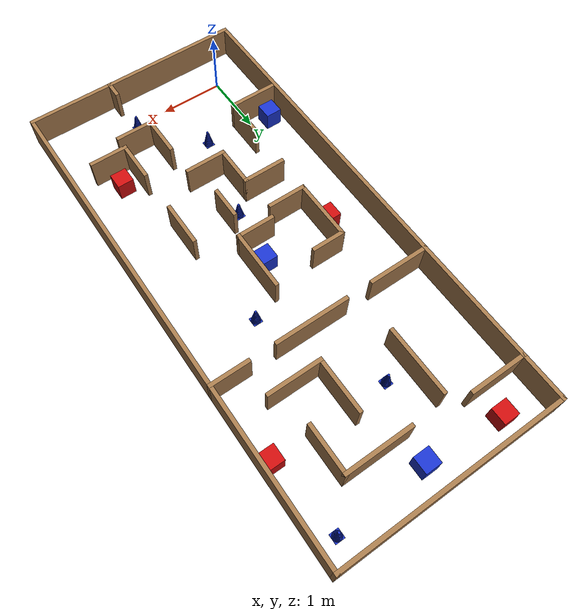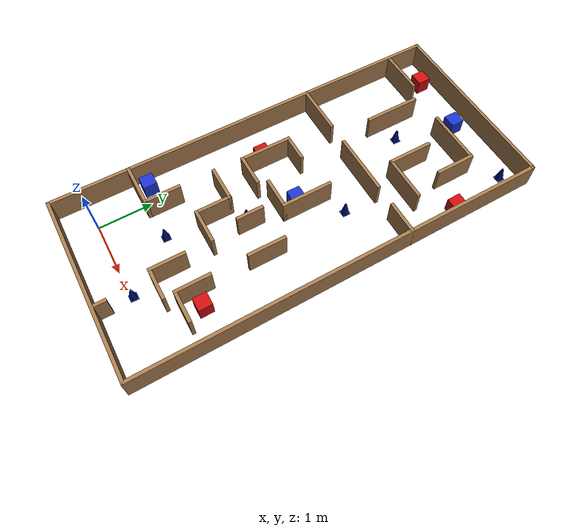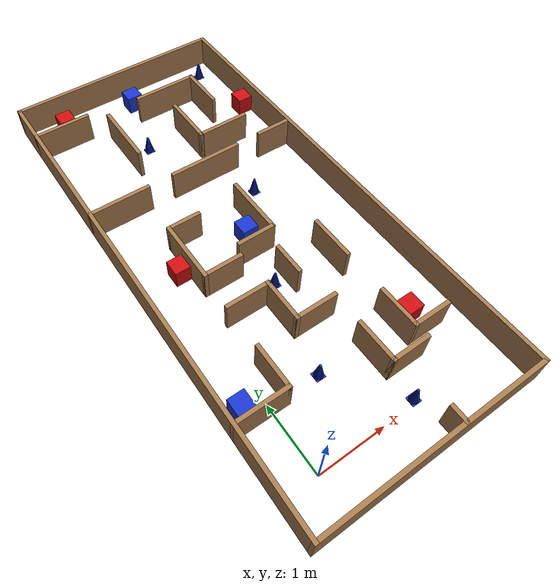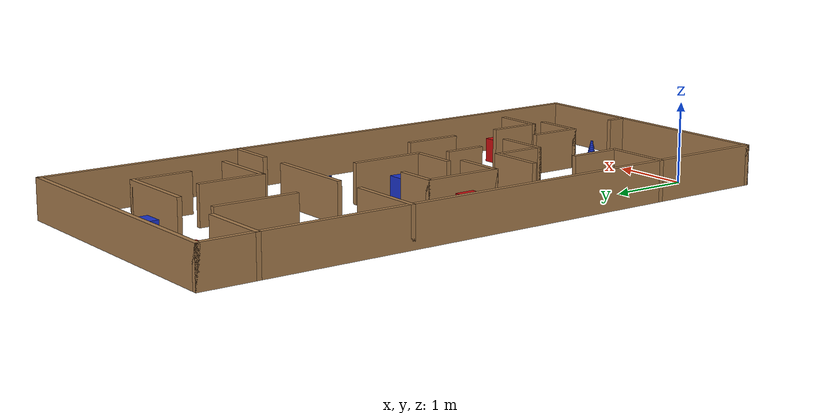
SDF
<sdf version="1.5">
 <world name="tars_qualy_foto">
  <physics type="ode">
   <max_step_size>0.001</max_step_size>
   <real_time_factor>1</real_time_factor>
   <real_time_update_rate>1000</real_time_update_rate>
   <gravity>0 0 -9.8</gravity>
  </physics>
  <plugin filename="gz-sim-physics-system" name="gz::sim::systems::Physics"/>
  <plugin filename="gz-sim-user-commands-system" name="gz::sim::systems::UserCommands"/>
  <plugin filename="gz-sim-scene-broadcaster-system" name="gz::sim::systems::SceneBroadcaster"/>
  <plugin filename="gz-sim-contact-system" name="gz::sim::systems::Contact"/>
  <plugin filename="gz-sim-sensors-system" name="gz::sim::systems::Sensors">
   <render_engine>ogre2</render_engine>
  </plugin>
  <plugin filename="gz-sim-imu-system" name="gz::sim::systems::Imu"/>
  <scene>
   <shadows>false</shadows>
   <ambient>0.2 0.2 0.2 1</ambient>
   <background>1 1 1 1</background>
   <grid>false</grid>
   <origin_visual>false</origin_visual>
  </scene>
  <include><uri>model://sun</uri></include>
  <light name="camera_spot_1_light" type="spot">
   <pose>-6 4 4 0 -1 -0.8</pose>
   <diffuse>0.5 0.5 0.5 1</diffuse>
   <specular>0.1 0.1 0.1 1</specular>
   <direction>0 0 -1</direction>
   <attenuation>
    <range>20</range>
    <constant>0.2</constant>
    <linear>0.01</linear>
    <quadratic>0.001</quadratic>
   </attenuation>
   <cast_shadows>0</cast_shadows>
   <spot><inner_angle>0.6</inner_angle><outer_angle>1</outer_angle><falloff>1</falloff></spot>
  </light>
  <light name="camera_spot_2_light" type="spot">
   <pose>5 -3 4 0 0.8 -0.6</pose>
   <diffuse>0.5 0.5 0.5 1</diffuse>
   <specular>0.1 0.1 0.1 1</specular>
   <direction>0 0 -1</direction>
   <attenuation>
    <range>20</range>
    <constant>0.3</constant>
    <linear>0.01</linear>
    <quadratic>0.001</quadratic>
   </attenuation>
   <cast_shadows>0</cast_shadows>
   <spot><inner_angle>0.6</inner_angle><outer_angle>1</outer_angle><falloff>1</falloff></spot>
  </light>
  <model name="paredes_borde">
   <static>true</static>
   <link name="pared_1">
    <pose>1.1900 -0.5700 0.250 0 0 0</pose>
    <collision name="collision"><geometry><box><size>3.5400 0.0600 0.5</size></box></geometry></collision>
    <visual name="visual">
     <geometry><box><size>3.5400 0.0600 0.5</size></box></geometry>
     <material><ambient>0.65 0.48 0.30 1</ambient><diffuse>0.65 0.48 0.30 1</diffuse></material>
    </visual>
   </link>
   <link name="pared_2">
    <pose>1.1900 7.0900 0.250 0 0 0</pose>
    <collision name="collision"><geometry><box><size>3.5400 0.0600 0.5</size></box></geometry></collision>
    <visual name="visual">
     <geometry><box><size>3.5400 0.0600 0.5</size></box></geometry>
     <material><ambient>0.65 0.48 0.30 1</ambient><diffuse>0.65 0.48 0.30 1</diffuse></material>
    </visual>
   </link>
   <link name="pared_3">
    <pose>-0.5500 3.2600 0.250 0 0 0</pose>
    <collision name="collision"><geometry><box><size>0.0600 7.7200 0.5</size></box></geometry></collision>
    <visual name="visual">
     <geometry><box><size>0.0600 7.7200 0.5</size></box></geometry>
     <material><ambient>0.65 0.48 0.30 1</ambient><diffuse>0.65 0.48 0.30 1</diffuse></material>
    </visual>
   </link>
   <link name="pared_4">
    <pose>2.9300 3.2600 0.250 0 0 0</pose>
    <collision name="collision"><geometry><box><size>0.0600 7.7200 0.5</size></box></geometry></collision>
    <visual name="visual">
     <geometry><box><size>0.0600 7.7200 0.5</size></box></geometry>
     <material><ambient>0.65 0.48 0.30 1</ambient><diffuse>0.65 0.48 0.30 1</diffuse></material>
    </visual>
   </link>
   <link name="pared_5">
    <pose>-0.1650 0.8800 0.250 0 0 0</pose>
    <collision name="collision"><geometry><box><size>0.8300 0.0600 0.5</size></box></geometry></collision>
    <visual name="visual">
     <geometry><box><size>0.8300 0.0600 0.5</size></box></geometry>
     <material><ambient>0.65 0.48 0.30 1</ambient><diffuse>0.65 0.48 0.30 1</diffuse></material>
    </visual>
   </link>
   <link name="pared_6">
    <pose>0.2200 1.1900 0.250 0 0 0</pose>
    <collision name="collision"><geometry><box><size>0.0600 0.6800 0.5</size></box></geometry></collision>
    <visual name="visual">
     <geometry><box><size>0.0600 0.6800 0.5</size></box></geometry>
     <material><ambient>0.65 0.48 0.30 1</ambient><diffuse>0.65 0.48 0.30 1</diffuse></material>
    </visual>
   </link>
   <link name="pared_7">
    <pose>0.5350 2.1700 0.250 0 0 0</pose>
    <collision name="collision"><geometry><box><size>0.6900 0.0600 0.5</size></box></geometry></collision>
    <visual name="visual">
     <geometry><box><size>0.6900 0.0600 0.5</size></box></geometry>
     <material><ambient>0.65 0.48 0.30 1</ambient><diffuse>0.65 0.48 0.30 1</diffuse></material>
    </visual>
   </link>
   <link name="pared_8">
    <pose>0.8500 1.8600 0.250 0 0 0</pose>
    <collision name="collision"><geometry><box><size>0.0600 0.6800 0.5</size></box></geometry></collision>
    <visual name="visual">
     <geometry><box><size>0.0600 0.6800 0.5</size></box></geometry>
     <material><ambient>0.65 0.48 0.30 1</ambient><diffuse>0.65 0.48 0.30 1</diffuse></material>
    </visual>
   </link>
   <link name="pared_9">
    <pose>1.1500 1.5500 0.250 0 0 0</pose>
    <collision name="collision"><geometry><box><size>0.6600 0.0600 0.5</size></box></geometry></collision>
    <visual name="visual">
     <geometry><box><size>0.6600 0.0600 0.5</size></box></geometry>
     <material><ambient>0.65 0.48 0.30 1</ambient><diffuse>0.65 0.48 0.30 1</diffuse></material>
    </visual>
   </link>
   <link name="pared_10">
    <pose>1.4500 0.7500 0.250 0 0 0</pose>
    <collision name="collision"><geometry><box><size>0.0600 0.6600 0.5</size></box></geometry></collision>
    <visual name="visual">
     <geometry><box><size>0.0600 0.6600 0.5</size></box></geometry>
     <material><ambient>0.65 0.48 0.30 1</ambient><diffuse>0.65 0.48 0.30 1</diffuse></material>
    </visual>
   </link>
   <link name="pared_11">
    <pose>1.7250 0.4500 0.250 0 0 0</pose>
    <collision name="collision"><geometry><box><size>0.6100 0.0600 0.5</size></box></geometry></collision>
    <visual name="visual">
     <geometry><box><size>0.6100 0.0600 0.5</size></box></geometry>
     <material><ambient>0.65 0.48 0.30 1</ambient><diffuse>0.65 0.48 0.30 1</diffuse></material>
    </visual>
   </link>
   <link name="pared_12">
    <pose>1.6000 -0.4600 0.250 0 0 0</pose>
    <collision name="collision"><geometry><box><size>0.0600 0.2800 0.5</size></box></geometry></collision>
    <visual name="visual">
     <geometry><box><size>0.0600 0.2800 0.5</size></box></geometry>
     <material><ambient>0.65 0.48 0.30 1</ambient><diffuse>0.65 0.48 0.30 1</diffuse></material>
    </visual>
   </link>
   <link name="pared_13">
    <pose>2.0000 0.9500 0.250 0 0 0</pose>
    <collision name="collision"><geometry><box><size>0.0600 0.6600 0.5</size></box></geometry></collision>
    <visual name="visual">
     <geometry><box><size>0.0600 0.6600 0.5</size></box></geometry>
     <material><ambient>0.65 0.48 0.30 1</ambient><diffuse>0.65 0.48 0.30 1</diffuse></material>
    </visual>
   </link>
   <link name="pared_14">
    <pose>2.2750 0.6500 0.250 0 0 0</pose>
    <collision name="collision"><geometry><box><size>0.6100 0.0600 0.5</size></box></geometry></collision>
    <visual name="visual">
     <geometry><box><size>0.6100 0.0600 0.5</size></box></geometry>
     <material><ambient>0.65 0.48 0.30 1</ambient><diffuse>0.65 0.48 0.30 1</diffuse></material>
    </visual>
   </link>
   <link name="pared_15">
    <pose>0.2400 3.1950 0.250 0 0 0</pose>
    <collision name="collision"><geometry><box><size>0.0600 0.9900 0.5</size></box></geometry></collision>
    <visual name="visual">
     <geometry><box><size>0.0600 0.9900 0.5</size></box></geometry>
     <material><ambient>0.65 0.48 0.30 1</ambient><diffuse>0.65 0.48 0.30 1</diffuse></material>
    </visual>
   </link>
   <link name="pared_16">
    <pose>0.4750 3.6600 0.250 0 0 0</pose>
    <collision name="collision"><geometry><box><size>0.5300 0.0600 0.5</size></box></geometry></collision>
    <visual name="visual">
     <geometry><box><size>0.5300 0.0600 0.5</size></box></geometry>
     <material><ambient>0.65 0.48 0.30 1</ambient><diffuse>0.65 0.48 0.30 1</diffuse></material>
    </visual>
   </link>
   <link name="pared_17">
    <pose>0.5200 2.7300 0.250 0 0 0</pose>
    <collision name="collision"><geometry><box><size>0.6200 0.0600 0.5</size></box></geometry></collision>
    <visual name="visual">
     <geometry><box><size>0.6200 0.0600 0.5</size></box></geometry>
     <material><ambient>0.65 0.48 0.30 1</ambient><diffuse>0.65 0.48 0.30 1</diffuse></material>
    </visual>
   </link>
   <link name="pared_18">
    <pose>1.4500 3.3500 0.250 0 0 0</pose>
    <collision name="collision"><geometry><box><size>0.0600 0.9600 0.5</size></box></geometry></collision>
    <visual name="visual">
     <geometry><box><size>0.0600 0.9600 0.5</size></box></geometry>
     <material><ambient>0.65 0.48 0.30 1</ambient><diffuse>0.65 0.48 0.30 1</diffuse></material>
    </visual>
   </link>
   <link name="pared_19">
    <pose>1.1750 2.9000 0.250 0 0 0</pose>
    <collision name="collision"><geometry><box><size>0.6100 0.0600 0.5</size></box></geometry></collision>
    <visual name="visual">
     <geometry><box><size>0.6100 0.0600 0.5</size></box></geometry>
     <material><ambient>0.65 0.48 0.30 1</ambient><diffuse>0.65 0.48 0.30 1</diffuse></material>
    </visual>
   </link>
   <link name="pared_20">
    <pose>2.0000 2.2750 0.250 0 0 0</pose>
    <collision name="collision"><geometry><box><size>0.0600 0.7100 0.5</size></box></geometry></collision>
    <visual name="visual">
     <geometry><box><size>0.0600 0.7100 0.5</size></box></geometry>
     <material><ambient>0.65 0.48 0.30 1</ambient><diffuse>0.65 0.48 0.30 1</diffuse></material>
    </visual>
   </link>
   <link name="pared_21">
    <pose>1.3000 2.3250 0.250 0 0 0</pose>
    <collision name="collision"><geometry><box><size>0.0600 0.5100 0.5</size></box></geometry></collision>
    <visual name="visual">
     <geometry><box><size>0.0600 0.5100 0.5</size></box></geometry>
     <material><ambient>0.65 0.48 0.30 1</ambient><diffuse>0.65 0.48 0.30 1</diffuse></material>
    </visual>
   </link>
   <link name="pared_22">
    <pose>-0.0900 4.5000 0.250 0 0 0</pose>
    <collision name="collision"><geometry><box><size>0.9800 0.0600 0.5</size></box></geometry></collision>
    <visual name="visual">
     <geometry><box><size>0.9800 0.0600 0.5</size></box></geometry>
     <material><ambient>0.65 0.48 0.30 1</ambient><diffuse>0.65 0.48 0.30 1</diffuse></material>
    </visual>
   </link>
   <link name="pared_23">
    <pose>1.3650 4.5000 0.250 0 0 0</pose>
    <collision name="collision"><geometry><box><size>1.1700 0.0600 0.5</size></box></geometry></collision>
    <visual name="visual">
     <geometry><box><size>1.1700 0.0600 0.5</size></box></geometry>
     <material><ambient>0.65 0.48 0.30 1</ambient><diffuse>0.65 0.48 0.30 1</diffuse></material>
    </visual>
   </link>
   <link name="pared_24">
    <pose>2.6450 4.5000 0.250 0 0 0</pose>
    <collision name="collision"><geometry><box><size>0.6300 0.0600 0.5</size></box></geometry></collision>
    <visual name="visual">
     <geometry><box><size>0.6300 0.0600 0.5</size></box></geometry>
     <material><ambient>0.65 0.48 0.30 1</ambient><diffuse>0.65 0.48 0.30 1</diffuse></material>
    </visual>
   </link>
   <link name="pared_25">
    <pose>0.6000 5.7000 0.250 0 0 0</pose>
    <collision name="collision"><geometry><box><size>0.0600 1.0600 0.5</size></box></geometry></collision>
    <visual name="visual">
     <geometry><box><size>0.0600 1.0600 0.5</size></box></geometry>
     <material><ambient>0.65 0.48 0.30 1</ambient><diffuse>0.65 0.48 0.30 1</diffuse></material>
    </visual>
   </link>
   <link name="pared_26">
    <pose>2.0000 5.0000 0.250 0 0 0</pose>
    <collision name="collision"><geometry><box><size>0.8600 0.0600 0.5</size></box></geometry></collision>
    <visual name="visual">
     <geometry><box><size>0.8600 0.0600 0.5</size></box></geometry>
     <material><ambient>0.65 0.48 0.30 1</ambient><diffuse>0.65 0.48 0.30 1</diffuse></material>
    </visual>
   </link>
   <link name="pared_27">
    <pose>1.6000 5.4000 0.250 0 0 0</pose>
    <collision name="collision"><geometry><box><size>0.0600 0.8600 0.5</size></box></geometry></collision>
    <visual name="visual">
     <geometry><box><size>0.0600 0.8600 0.5</size></box></geometry>
     <material><ambient>0.65 0.48 0.30 1</ambient><diffuse>0.65 0.48 0.30 1</diffuse></material>
    </visual>
   </link>
   <link name="pared_28">
    <pose>-0.1250 6.4000 0.250 0 0 0</pose>
    <collision name="collision"><geometry><box><size>0.9100 0.0600 0.5</size></box></geometry></collision>
    <visual name="visual">
     <geometry><box><size>0.9100 0.0600 0.5</size></box></geometry>
     <material><ambient>0.65 0.48 0.30 1</ambient><diffuse>0.65 0.48 0.30 1</diffuse></material>
    </visual>
   </link>
   <link name="pared_29">
    <pose>1.7000 6.3000 0.250 0 0 0</pose>
    <collision name="collision"><geometry><box><size>1.0600 0.0600 0.5</size></box></geometry></collision>
    <visual name="visual">
     <geometry><box><size>1.0600 0.0600 0.5</size></box></geometry>
     <material><ambient>0.65 0.48 0.30 1</ambient><diffuse>0.65 0.48 0.30 1</diffuse></material>
    </visual>
   </link>
   <link name="pared_30">
    <pose>2.2000 5.9500 0.250 0 0 0</pose>
    <collision name="collision"><geometry><box><size>0.0600 0.7600 0.5</size></box></geometry></collision>
    <visual name="visual">
     <geometry><box><size>0.0600 0.7600 0.5</size></box></geometry>
     <material><ambient>0.65 0.48 0.30 1</ambient><diffuse>0.65 0.48 0.30 1</diffuse></material>
    </visual>
   </link>
  </model>
  <model name="marcas_color">
   <static>true</static>
   <link name="cuadrado_rojo_1">
    <pose>2.270 0.970 .15 0 0 0</pose>
    <collision name="collision"><geometry><box><size>0.25 0.25 0.3</size></box></geometry></collision>
    <visual name="visual">
     <geometry><box><size>0.25 0.25 0.3</size></box></geometry>
     <material>
      <ambient>0.8 0.05 0.05 1</ambient>
      <diffuse>0.8 0.05 0.05 1</diffuse>
      <specular>0.1 0.1 0.1 1</specular>
     </material>
    </visual>
   </link>
   <link name="cuadrado_rojo_2">
    <pose>0.100 3.190 .15 0 0 0</pose>
    <collision name="collision"><geometry><box><size>0.25 0.25 0.3</size></box></geometry></collision>
    <visual name="visual">
     <geometry><box><size>0.25 0.25 0.3</size></box></geometry>
     <material>
      <ambient>0.8 0.05 0.05 1</ambient>
      <diffuse>0.8 0.05 0.05 1</diffuse>
      <specular>0.1 0.1 0.1 1</specular>
     </material>
    </visual>
   </link>
   <link name="cuadrado_rojo_3">
    <pose>0.060 6.790 .15 0 0 0</pose>
    <collision name="collision"><geometry><box><size>0.25 0.25 0.3</size></box></geometry></collision>
    <visual name="visual">
     <geometry><box><size>0.25 0.25 0.3</size></box></geometry>
     <material>
      <ambient>0.8 0.05 0.05 1</ambient>
      <diffuse>0.8 0.05 0.05 1</diffuse>
      <specular>0.1 0.1 0.1 1</specular>
     </material>
    </visual>
   </link>
   <link name="cuadrado_rojo_4">
    <pose>2.780 5.610 .15 0 0 0</pose>
    <collision name="collision"><geometry><box><size>0.25 0.25 0.3</size></box></geometry></collision>
    <visual name="visual">
     <geometry><box><size>0.25 0.25 0.3</size></box></geometry>
     <material>
      <ambient>0.8 0.05 0.05 1</ambient>
      <diffuse>0.8 0.05 0.05 1</diffuse>
      <specular>0.1 0.1 0.1 1</specular>
     </material>
    </visual>
   </link>
   <link name="cuadrado_azul_1">
    <pose>-0.300 1.100 .15 0 0 0</pose>
    <collision name="collision"><geometry><box><size>0.25 0.25 0.3</size></box></geometry></collision>
    <visual name="visual">
     <geometry><box><size>0.25 0.25 0.3</size></box></geometry>
     <material>
      <ambient>0.1 0.2 0.8 1</ambient>
      <diffuse>0.1 0.2 0.8 1</diffuse>
      <specular>0.1 0.1 0.1 1</specular>
     </material>
    </visual>
   </link>
   <link name="cuadrado_azul_2">
    <pose>1.250 3.250 .15 0 0 0</pose>
    <collision name="collision"><geometry><box><size>0.25 0.25 0.3</size></box></geometry></collision>
    <visual name="visual">
     <geometry><box><size>0.25 0.25 0.3</size></box></geometry>
     <material>
      <ambient>0.1 0.2 0.8 1</ambient>
      <diffuse>0.1 0.2 0.8 1</diffuse>
      <specular>0.1 0.1 0.1 1</specular>
     </material>
    </visual>
   </link>
   <link name="cuadrado_azul_3">
    <pose>1.250 6.700 .15 0 0 0</pose>
    <collision name="collision"><geometry><box><size>0.25 0.25 0.3</size></box></geometry></collision>
    <visual name="visual">
     <geometry><box><size>0.25 0.25 0.3</size></box></geometry>
     <material>
      <ambient>0.1 0.2 0.8 1</ambient>
      <diffuse>0.1 0.2 0.8 1</diffuse>
      <specular>0.1 0.1 0.1 1</specular>
     </material>
    </visual>
   </link>
  </model>
  <model name="senuelo_cono_1">
   <static>1</static>
   <pose>1.520 0.050 0 0 0 0</pose>
   <link name="senuelo_cono_1">
    <collision name="c0">
     <pose>0 0 0.0025 0 0 0</pose>
     <geometry><box><size>0.14 0.14 0.005</size></box></geometry>
    </collision>
    <visual name="v0">
     <pose>0 0 0.0025 0 0 0</pose>
     <geometry><box><size>0.14 0.14 0.005</size></box></geometry>
     <material>
      <ambient>0.10 0.20 0.80 1</ambient>
      <diffuse>0.10 0.20 0.80 1</diffuse>
      <specular>0.1 0.1 0.1 1</specular>
     </material>
    </visual>
    <collision name="c1">
     <pose>0 0 0.0175 0 0 0</pose>
     <geometry><cylinder><radius>0.0674</radius><length>0.0250</length></cylinder></geometry>
    </collision>
    <visual name="v1">
     <pose>0 0 0.0175 0 0 0</pose>
     <geometry><cylinder><radius>0.0674</radius><length>0.0250</length></cylinder></geometry>
     <material>
      <ambient>0.10 0.20 0.80 1</ambient>
      <diffuse>0.10 0.20 0.80 1</diffuse>
      <specular>0.1 0.1 0.1 1</specular>
     </material>
    </visual>
    <collision name="c2">
     <pose>0 0 0.0425 0 0 0</pose>
     <geometry><cylinder><radius>0.0622</radius><length>0.0250</length></cylinder></geometry>
    </collision>
    <visual name="v2">
     <pose>0 0 0.0425 0 0 0</pose>
     <geometry><cylinder><radius>0.0622</radius><length>0.0250</length></cylinder></geometry>
     <material>
      <ambient>0.10 0.20 0.80 1</ambient>
      <diffuse>0.10 0.20 0.80 1</diffuse>
      <specular>0.1 0.1 0.1 1</specular>
     </material>
    </visual>
    <collision name="c3">
     <pose>0 0 0.0675 0 0 0</pose>
     <geometry><cylinder><radius>0.0569</radius><length>0.0250</length></cylinder></geometry>
    </collision>
    <visual name="v3">
     <pose>0 0 0.0675 0 0 0</pose>
     <geometry><cylinder><radius>0.0569</radius><length>0.0250</length></cylinder></geometry>
     <material>
      <ambient>0.10 0.20 0.80 1</ambient>
      <diffuse>0.10 0.20 0.80 1</diffuse>
      <specular>0.1 0.1 0.1 1</specular>
     </material>
    </visual>
    <collision name="c4">
     <pose>0 0 0.0925 0 0 0</pose>
     <geometry><cylinder><radius>0.0517</radius><length>0.0250</length></cylinder></geometry>
    </collision>
    <visual name="v4">
     <pose>0 0 0.0925 0 0 0</pose>
     <geometry><cylinder><radius>0.0517</radius><length>0.0250</length></cylinder></geometry>
     <material>
      <ambient>0.10 0.20 0.80 1</ambient>
      <diffuse>0.10 0.20 0.80 1</diffuse>
      <specular>0.1 0.1 0.1 1</specular>
     </material>
    </visual>
    <collision name="c5">
     <pose>0 0 0.1175 0 0 0</pose>
     <geometry><cylinder><radius>0.0465</radius><length>0.0250</length></cylinder></geometry>
    </collision>
    <visual name="v5">
     <pose>0 0 0.1175 0 0 0</pose>
     <geometry><cylinder><radius>0.0465</radius><length>0.0250</length></cylinder></geometry>
     <material>
      <ambient>0.10 0.20 0.80 1</ambient>
      <diffuse>0.10 0.20 0.80 1</diffuse>
      <specular>0.1 0.1 0.1 1</specular>
     </material>
    </visual>
    <collision name="c6">
     <pose>0 0 0.1425 0 0 0</pose>
     <geometry><cylinder><radius>0.0413</radius><length>0.0250</length></cylinder></geometry>
    </collision>
    <visual name="v6">
     <pose>0 0 0.1425 0 0 0</pose>
     <geometry><cylinder><radius>0.0413</radius><length>0.0250</length></cylinder></geometry>
     <material>
      <ambient>0.10 0.20 0.80 1</ambient>
      <diffuse>0.10 0.20 0.80 1</diffuse>
      <specular>0.1 0.1 0.1 1</specular>
     </material>
    </visual>
    <collision name="c7">
     <pose>0 0 0.1675 0 0 0</pose>
     <geometry><cylinder><radius>0.0360</radius><length>0.0250</length></cylinder></geometry>
    </collision>
    <visual name="v7">
     <pose>0 0 0.1675 0 0 0</pose>
     <geometry><cylinder><radius>0.0360</radius><length>0.0250</length></cylinder></geometry>
     <material>
      <ambient>0.10 0.20 0.80 1</ambient>
      <diffuse>0.10 0.20 0.80 1</diffuse>
      <specular>0.1 0.1 0.1 1</specular>
     </material>
    </visual>
    <collision name="c8">
     <pose>0 0 0.1925 0 0 0</pose>
     <geometry><cylinder><radius>0.0308</radius><length>0.0250</length></cylinder></geometry>
    </collision>
    <visual name="v8">
     <pose>0 0 0.1925 0 0 0</pose>
     <geometry><cylinder><radius>0.0308</radius><length>0.0250</length></cylinder></geometry>
     <material>
      <ambient>0.10 0.20 0.80 1</ambient>
      <diffuse>0.10 0.20 0.80 1</diffuse>
      <specular>0.1 0.1 0.1 1</specular>
     </material>
    </visual>
    <collision name="c9">
     <pose>0 0 0.2175 0 0 0</pose>
     <geometry><cylinder><radius>0.0256</radius><length>0.0250</length></cylinder></geometry>
    </collision>
    <visual name="v9">
     <pose>0 0 0.2175 0 0 0</pose>
     <geometry><cylinder><radius>0.0256</radius><length>0.0250</length></cylinder></geometry>
     <material>
      <ambient>0.10 0.20 0.80 1</ambient>
      <diffuse>0.10 0.20 0.80 1</diffuse>
      <specular>0.1 0.1 0.1 1</specular>
     </material>
    </visual>
    <collision name="c10">
     <pose>0 0 0.2425 0 0 0</pose>
     <geometry><cylinder><radius>0.0203</radius><length>0.0250</length></cylinder></geometry>
    </collision>
    <visual name="v10">
     <pose>0 0 0.2425 0 0 0</pose>
     <geometry><cylinder><radius>0.0203</radius><length>0.0250</length></cylinder></geometry>
     <material>
      <ambient>0.10 0.20 0.80 1</ambient>
      <diffuse>0.10 0.20 0.80 1</diffuse>
      <specular>0.1 0.1 0.1 1</specular>
     </material>
    </visual>
    <collision name="c11">
     <pose>0 0 0.2675 0 0 0</pose>
     <geometry><cylinder><radius>0.0151</radius><length>0.0250</length></cylinder></geometry>
    </collision>
    <visual name="v11">
     <pose>0 0 0.2675 0 0 0</pose>
     <geometry><cylinder><radius>0.0151</radius><length>0.0250</length></cylinder></geometry>
     <material>
      <ambient>0.10 0.20 0.80 1</ambient>
      <diffuse>0.10 0.20 0.80 1</diffuse>
      <specular>0.1 0.1 0.1 1</specular>
     </material>
    </visual>
   </link>
  </model>
  <model name="senuelo_cono_2">
   <static>1</static>
   <pose>0.760 0.950 0 0 0 0</pose>
   <link name="senuelo_cono_2">
    <collision name="c0">
     <pose>0 0 0.0025 0 0 0</pose>
     <geometry><box><size>0.14 0.14 0.005</size></box></geometry>
    </collision>
    <visual name="v0">
     <pose>0 0 0.0025 0 0 0</pose>
     <geometry><box><size>0.14 0.14 0.005</size></box></geometry>
     <material>
      <ambient>0.10 0.20 0.80 1</ambient>
      <diffuse>0.10 0.20 0.80 1</diffuse>
      <specular>0.1 0.1 0.1 1</specular>
     </material>
    </visual>
    <collision name="c1">
     <pose>0 0 0.0175 0 0 0</pose>
     <geometry><cylinder><radius>0.0674</radius><length>0.0250</length></cylinder></geometry>
    </collision>
    <visual name="v1">
     <pose>0 0 0.0175 0 0 0</pose>
     <geometry><cylinder><radius>0.0674</radius><length>0.0250</length></cylinder></geometry>
     <material>
      <ambient>0.10 0.20 0.80 1</ambient>
      <diffuse>0.10 0.20 0.80 1</diffuse>
      <specular>0.1 0.1 0.1 1</specular>
     </material>
    </visual>
    <collision name="c2">
     <pose>0 0 0.0425 0 0 0</pose>
     <geometry><cylinder><radius>0.0622</radius><length>0.0250</length></cylinder></geometry>
    </collision>
    <visual name="v2">
     <pose>0 0 0.0425 0 0 0</pose>
     <geometry><cylinder><radius>0.0622</radius><length>0.0250</length></cylinder></geometry>
     <material>
      <ambient>0.10 0.20 0.80 1</ambient>
      <diffuse>0.10 0.20 0.80 1</diffuse>
      <specular>0.1 0.1 0.1 1</specular>
     </material>
    </visual>
    <collision name="c3">
     <pose>0 0 0.0675 0 0 0</pose>
     <geometry><cylinder><radius>0.0569</radius><length>0.0250</length></cylinder></geometry>
    </collision>
    <visual name="v3">
     <pose>0 0 0.0675 0 0 0</pose>
     <geometry><cylinder><radius>0.0569</radius><length>0.0250</length></cylinder></geometry>
     <material>
      <ambient>0.10 0.20 0.80 1</ambient>
      <diffuse>0.10 0.20 0.80 1</diffuse>
      <specular>0.1 0.1 0.1 1</specular>
     </material>
    </visual>
    <collision name="c4">
     <pose>0 0 0.0925 0 0 0</pose>
     <geometry><cylinder><radius>0.0517</radius><length>0.0250</length></cylinder></geometry>
    </collision>
    <visual name="v4">
     <pose>0 0 0.0925 0 0 0</pose>
     <geometry><cylinder><radius>0.0517</radius><length>0.0250</length></cylinder></geometry>
     <material>
      <ambient>0.10 0.20 0.80 1</ambient>
      <diffuse>0.10 0.20 0.80 1</diffuse>
      <specular>0.1 0.1 0.1 1</specular>
     </material>
    </visual>
    <collision name="c5">
     <pose>0 0 0.1175 0 0 0</pose>
     <geometry><cylinder><radius>0.0465</radius><length>0.0250</length></cylinder></geometry>
    </collision>
    <visual name="v5">
     <pose>0 0 0.1175 0 0 0</pose>
     <geometry><cylinder><radius>0.0465</radius><length>0.0250</length></cylinder></geometry>
     <material>
      <ambient>0.10 0.20 0.80 1</ambient>
      <diffuse>0.10 0.20 0.80 1</diffuse>
      <specular>0.1 0.1 0.1 1</specular>
     </material>
    </visual>
    <collision name="c6">
     <pose>0 0 0.1425 0 0 0</pose>
     <geometry><cylinder><radius>0.0413</radius><length>0.0250</length></cylinder></geometry>
    </collision>
    <visual name="v6">
     <pose>0 0 0.1425 0 0 0</pose>
     <geometry><cylinder><radius>0.0413</radius><length>0.0250</length></cylinder></geometry>
     <material>
      <ambient>0.10 0.20 0.80 1</ambient>
      <diffuse>0.10 0.20 0.80 1</diffuse>
      <specular>0.1 0.1 0.1 1</specular>
     </material>
    </visual>
    <collision name="c7">
     <pose>0 0 0.1675 0 0 0</pose>
     <geometry><cylinder><radius>0.0360</radius><length>0.0250</length></cylinder></geometry>
    </collision>
    <visual name="v7">
     <pose>0 0 0.1675 0 0 0</pose>
     <geometry><cylinder><radius>0.0360</radius><length>0.0250</length></cylinder></geometry>
     <material>
      <ambient>0.10 0.20 0.80 1</ambient>
      <diffuse>0.10 0.20 0.80 1</diffuse>
      <specular>0.1 0.1 0.1 1</specular>
     </material>
    </visual>
    <collision name="c8">
     <pose>0 0 0.1925 0 0 0</pose>
     <geometry><cylinder><radius>0.0308</radius><length>0.0250</length></cylinder></geometry>
    </collision>
    <visual name="v8">
     <pose>0 0 0.1925 0 0 0</pose>
     <geometry><cylinder><radius>0.0308</radius><length>0.0250</length></cylinder></geometry>
     <material>
      <ambient>0.10 0.20 0.80 1</ambient>
      <diffuse>0.10 0.20 0.80 1</diffuse>
      <specular>0.1 0.1 0.1 1</specular>
     </material>
    </visual>
    <collision name="c9">
     <pose>0 0 0.2175 0 0 0</pose>
     <geometry><cylinder><radius>0.0256</radius><length>0.0250</length></cylinder></geometry>
    </collision>
    <visual name="v9">
     <pose>0 0 0.2175 0 0 0</pose>
     <geometry><cylinder><radius>0.0256</radius><length>0.0250</length></cylinder></geometry>
     <material>
      <ambient>0.10 0.20 0.80 1</ambient>
      <diffuse>0.10 0.20 0.80 1</diffuse>
      <specular>0.1 0.1 0.1 1</specular>
     </material>
    </visual>
    <collision name="c10">
     <pose>0 0 0.2425 0 0 0</pose>
     <geometry><cylinder><radius>0.0203</radius><length>0.0250</length></cylinder></geometry>
    </collision>
    <visual name="v10">
     <pose>0 0 0.2425 0 0 0</pose>
     <geometry><cylinder><radius>0.0203</radius><length>0.0250</length></cylinder></geometry>
     <material>
      <ambient>0.10 0.20 0.80 1</ambient>
      <diffuse>0.10 0.20 0.80 1</diffuse>
      <specular>0.1 0.1 0.1 1</specular>
     </material>
    </visual>
    <collision name="c11">
     <pose>0 0 0.2675 0 0 0</pose>
     <geometry><cylinder><radius>0.0151</radius><length>0.0250</length></cylinder></geometry>
    </collision>
    <visual name="v11">
     <pose>0 0 0.2675 0 0 0</pose>
     <geometry><cylinder><radius>0.0151</radius><length>0.0250</length></cylinder></geometry>
     <material>
      <ambient>0.10 0.20 0.80 1</ambient>
      <diffuse>0.10 0.20 0.80 1</diffuse>
      <specular>0.1 0.1 0.1 1</specular>
     </material>
    </visual>
   </link>
  </model>
  <model name="senuelo_cono_3">
   <static>1</static>
   <pose>1.100 2.340 0 0 0 0</pose>
   <link name="senuelo_cono_3">
    <collision name="c0">
     <pose>0 0 0.0025 0 0 0</pose>
     <geometry><box><size>0.14 0.14 0.005</size></box></geometry>
    </collision>
    <visual name="v0">
     <pose>0 0 0.0025 0 0 0</pose>
     <geometry><box><size>0.14 0.14 0.005</size></box></geometry>
     <material>
      <ambient>0.10 0.20 0.80 1</ambient>
      <diffuse>0.10 0.20 0.80 1</diffuse>
      <specular>0.1 0.1 0.1 1</specular>
     </material>
    </visual>
    <collision name="c1">
     <pose>0 0 0.0175 0 0 0</pose>
     <geometry><cylinder><radius>0.0674</radius><length>0.0250</length></cylinder></geometry>
    </collision>
    <visual name="v1">
     <pose>0 0 0.0175 0 0 0</pose>
     <geometry><cylinder><radius>0.0674</radius><length>0.0250</length></cylinder></geometry>
     <material>
      <ambient>0.10 0.20 0.80 1</ambient>
      <diffuse>0.10 0.20 0.80 1</diffuse>
      <specular>0.1 0.1 0.1 1</specular>
     </material>
    </visual>
    <collision name="c2">
     <pose>0 0 0.0425 0 0 0</pose>
     <geometry><cylinder><radius>0.0622</radius><length>0.0250</length></cylinder></geometry>
    </collision>
    <visual name="v2">
     <pose>0 0 0.0425 0 0 0</pose>
     <geometry><cylinder><radius>0.0622</radius><length>0.0250</length></cylinder></geometry>
     <material>
      <ambient>0.10 0.20 0.80 1</ambient>
      <diffuse>0.10 0.20 0.80 1</diffuse>
      <specular>0.1 0.1 0.1 1</specular>
     </material>
    </visual>
    <collision name="c3">
     <pose>0 0 0.0675 0 0 0</pose>
     <geometry><cylinder><radius>0.0569</radius><length>0.0250</length></cylinder></geometry>
    </collision>
    <visual name="v3">
     <pose>0 0 0.0675 0 0 0</pose>
     <geometry><cylinder><radius>0.0569</radius><length>0.0250</length></cylinder></geometry>
     <material>
      <ambient>0.10 0.20 0.80 1</ambient>
      <diffuse>0.10 0.20 0.80 1</diffuse>
      <specular>0.1 0.1 0.1 1</specular>
     </material>
    </visual>
    <collision name="c4">
     <pose>0 0 0.0925 0 0 0</pose>
     <geometry><cylinder><radius>0.0517</radius><length>0.0250</length></cylinder></geometry>
    </collision>
    <visual name="v4">
     <pose>0 0 0.0925 0 0 0</pose>
     <geometry><cylinder><radius>0.0517</radius><length>0.0250</length></cylinder></geometry>
     <material>
      <ambient>0.10 0.20 0.80 1</ambient>
      <diffuse>0.10 0.20 0.80 1</diffuse>
      <specular>0.1 0.1 0.1 1</specular>
     </material>
    </visual>
    <collision name="c5">
     <pose>0 0 0.1175 0 0 0</pose>
     <geometry><cylinder><radius>0.0465</radius><length>0.0250</length></cylinder></geometry>
    </collision>
    <visual name="v5">
     <pose>0 0 0.1175 0 0 0</pose>
     <geometry><cylinder><radius>0.0465</radius><length>0.0250</length></cylinder></geometry>
     <material>
      <ambient>0.10 0.20 0.80 1</ambient>
      <diffuse>0.10 0.20 0.80 1</diffuse>
      <specular>0.1 0.1 0.1 1</specular>
     </material>
    </visual>
    <collision name="c6">
     <pose>0 0 0.1425 0 0 0</pose>
     <geometry><cylinder><radius>0.0413</radius><length>0.0250</length></cylinder></geometry>
    </collision>
    <visual name="v6">
     <pose>0 0 0.1425 0 0 0</pose>
     <geometry><cylinder><radius>0.0413</radius><length>0.0250</length></cylinder></geometry>
     <material>
      <ambient>0.10 0.20 0.80 1</ambient>
      <diffuse>0.10 0.20 0.80 1</diffuse>
      <specular>0.1 0.1 0.1 1</specular>
     </material>
    </visual>
    <collision name="c7">
     <pose>0 0 0.1675 0 0 0</pose>
     <geometry><cylinder><radius>0.0360</radius><length>0.0250</length></cylinder></geometry>
    </collision>
    <visual name="v7">
     <pose>0 0 0.1675 0 0 0</pose>
     <geometry><cylinder><radius>0.0360</radius><length>0.0250</length></cylinder></geometry>
     <material>
      <ambient>0.10 0.20 0.80 1</ambient>
      <diffuse>0.10 0.20 0.80 1</diffuse>
      <specular>0.1 0.1 0.1 1</specular>
     </material>
    </visual>
    <collision name="c8">
     <pose>0 0 0.1925 0 0 0</pose>
     <geometry><cylinder><radius>0.0308</radius><length>0.0250</length></cylinder></geometry>
    </collision>
    <visual name="v8">
     <pose>0 0 0.1925 0 0 0</pose>
     <geometry><cylinder><radius>0.0308</radius><length>0.0250</length></cylinder></geometry>
     <material>
      <ambient>0.10 0.20 0.80 1</ambient>
      <diffuse>0.10 0.20 0.80 1</diffuse>
      <specular>0.1 0.1 0.1 1</specular>
     </material>
    </visual>
    <collision name="c9">
     <pose>0 0 0.2175 0 0 0</pose>
     <geometry><cylinder><radius>0.0256</radius><length>0.0250</length></cylinder></geometry>
    </collision>
    <visual name="v9">
     <pose>0 0 0.2175 0 0 0</pose>
     <geometry><cylinder><radius>0.0256</radius><length>0.0250</length></cylinder></geometry>
     <material>
      <ambient>0.10 0.20 0.80 1</ambient>
      <diffuse>0.10 0.20 0.80 1</diffuse>
      <specular>0.1 0.1 0.1 1</specular>
     </material>
    </visual>
    <collision name="c10">
     <pose>0 0 0.2425 0 0 0</pose>
     <geometry><cylinder><radius>0.0203</radius><length>0.0250</length></cylinder></geometry>
    </collision>
    <visual name="v10">
     <pose>0 0 0.2425 0 0 0</pose>
     <geometry><cylinder><radius>0.0203</radius><length>0.0250</length></cylinder></geometry>
     <material>
      <ambient>0.10 0.20 0.80 1</ambient>
      <diffuse>0.10 0.20 0.80 1</diffuse>
      <specular>0.1 0.1 0.1 1</specular>
     </material>
    </visual>
    <collision name="c11">
     <pose>0 0 0.2675 0 0 0</pose>
     <geometry><cylinder><radius>0.0151</radius><length>0.0250</length></cylinder></geometry>
    </collision>
    <visual name="v11">
     <pose>0 0 0.2675 0 0 0</pose>
     <geometry><cylinder><radius>0.0151</radius><length>0.0250</length></cylinder></geometry>
     <material>
      <ambient>0.10 0.20 0.80 1</ambient>
      <diffuse>0.10 0.20 0.80 1</diffuse>
      <specular>0.1 0.1 0.1 1</specular>
     </material>
    </visual>
   </link>
  </model>
  <model name="senuelo_cono_4">
   <static>1</static>
   <pose>1.850 3.900 0 0 0 0</pose>
   <link name="senuelo_cono_4">
    <collision name="c0">
     <pose>0 0 0.0025 0 0 0</pose>
     <geometry><box><size>0.14 0.14 0.005</size></box></geometry>
    </collision>
    <visual name="v0">
     <pose>0 0 0.0025 0 0 0</pose>
     <geometry><box><size>0.14 0.14 0.005</size></box></geometry>
     <material>
      <ambient>0.10 0.20 0.80 1</ambient>
      <diffuse>0.10 0.20 0.80 1</diffuse>
      <specular>0.1 0.1 0.1 1</specular>
     </material>
    </visual>
    <collision name="c1">
     <pose>0 0 0.0175 0 0 0</pose>
     <geometry><cylinder><radius>0.0674</radius><length>0.0250</length></cylinder></geometry>
    </collision>
    <visual name="v1">
     <pose>0 0 0.0175 0 0 0</pose>
     <geometry><cylinder><radius>0.0674</radius><length>0.0250</length></cylinder></geometry>
     <material>
      <ambient>0.10 0.20 0.80 1</ambient>
      <diffuse>0.10 0.20 0.80 1</diffuse>
      <specular>0.1 0.1 0.1 1</specular>
     </material>
    </visual>
    <collision name="c2">
     <pose>0 0 0.0425 0 0 0</pose>
     <geometry><cylinder><radius>0.0622</radius><length>0.0250</length></cylinder></geometry>
    </collision>
    <visual name="v2">
     <pose>0 0 0.0425 0 0 0</pose>
     <geometry><cylinder><radius>0.0622</radius><length>0.0250</length></cylinder></geometry>
     <material>
      <ambient>0.10 0.20 0.80 1</ambient>
      <diffuse>0.10 0.20 0.80 1</diffuse>
      <specular>0.1 0.1 0.1 1</specular>
     </material>
    </visual>
    <collision name="c3">
     <pose>0 0 0.0675 0 0 0</pose>
     <geometry><cylinder><radius>0.0569</radius><length>0.0250</length></cylinder></geometry>
    </collision>
    <visual name="v3">
     <pose>0 0 0.0675 0 0 0</pose>
     <geometry><cylinder><radius>0.0569</radius><length>0.0250</length></cylinder></geometry>
     <material>
      <ambient>0.10 0.20 0.80 1</ambient>
      <diffuse>0.10 0.20 0.80 1</diffuse>
      <specular>0.1 0.1 0.1 1</specular>
     </material>
    </visual>
    <collision name="c4">
     <pose>0 0 0.0925 0 0 0</pose>
     <geometry><cylinder><radius>0.0517</radius><length>0.0250</length></cylinder></geometry>
    </collision>
    <visual name="v4">
     <pose>0 0 0.0925 0 0 0</pose>
     <geometry><cylinder><radius>0.0517</radius><length>0.0250</length></cylinder></geometry>
     <material>
      <ambient>0.10 0.20 0.80 1</ambient>
      <diffuse>0.10 0.20 0.80 1</diffuse>
      <specular>0.1 0.1 0.1 1</specular>
     </material>
    </visual>
    <collision name="c5">
     <pose>0 0 0.1175 0 0 0</pose>
     <geometry><cylinder><radius>0.0465</radius><length>0.0250</length></cylinder></geometry>
    </collision>
    <visual name="v5">
     <pose>0 0 0.1175 0 0 0</pose>
     <geometry><cylinder><radius>0.0465</radius><length>0.0250</length></cylinder></geometry>
     <material>
      <ambient>0.10 0.20 0.80 1</ambient>
      <diffuse>0.10 0.20 0.80 1</diffuse>
      <specular>0.1 0.1 0.1 1</specular>
     </material>
    </visual>
    <collision name="c6">
     <pose>0 0 0.1425 0 0 0</pose>
     <geometry><cylinder><radius>0.0413</radius><length>0.0250</length></cylinder></geometry>
    </collision>
    <visual name="v6">
     <pose>0 0 0.1425 0 0 0</pose>
     <geometry><cylinder><radius>0.0413</radius><length>0.0250</length></cylinder></geometry>
     <material>
      <ambient>0.10 0.20 0.80 1</ambient>
      <diffuse>0.10 0.20 0.80 1</diffuse>
      <specular>0.1 0.1 0.1 1</specular>
     </material>
    </visual>
    <collision name="c7">
     <pose>0 0 0.1675 0 0 0</pose>
     <geometry><cylinder><radius>0.0360</radius><length>0.0250</length></cylinder></geometry>
    </collision>
    <visual name="v7">
     <pose>0 0 0.1675 0 0 0</pose>
     <geometry><cylinder><radius>0.0360</radius><length>0.0250</length></cylinder></geometry>
     <material>
      <ambient>0.10 0.20 0.80 1</ambient>
      <diffuse>0.10 0.20 0.80 1</diffuse>
      <specular>0.1 0.1 0.1 1</specular>
     </material>
    </visual>
    <collision name="c8">
     <pose>0 0 0.1925 0 0 0</pose>
     <geometry><cylinder><radius>0.0308</radius><length>0.0250</length></cylinder></geometry>
    </collision>
    <visual name="v8">
     <pose>0 0 0.1925 0 0 0</pose>
     <geometry><cylinder><radius>0.0308</radius><length>0.0250</length></cylinder></geometry>
     <material>
      <ambient>0.10 0.20 0.80 1</ambient>
      <diffuse>0.10 0.20 0.80 1</diffuse>
      <specular>0.1 0.1 0.1 1</specular>
     </material>
    </visual>
    <collision name="c9">
     <pose>0 0 0.2175 0 0 0</pose>
     <geometry><cylinder><radius>0.0256</radius><length>0.0250</length></cylinder></geometry>
    </collision>
    <visual name="v9">
     <pose>0 0 0.2175 0 0 0</pose>
     <geometry><cylinder><radius>0.0256</radius><length>0.0250</length></cylinder></geometry>
     <material>
      <ambient>0.10 0.20 0.80 1</ambient>
      <diffuse>0.10 0.20 0.80 1</diffuse>
      <specular>0.1 0.1 0.1 1</specular>
     </material>
    </visual>
    <collision name="c10">
     <pose>0 0 0.2425 0 0 0</pose>
     <geometry><cylinder><radius>0.0203</radius><length>0.0250</length></cylinder></geometry>
    </collision>
    <visual name="v10">
     <pose>0 0 0.2425 0 0 0</pose>
     <geometry><cylinder><radius>0.0203</radius><length>0.0250</length></cylinder></geometry>
     <material>
      <ambient>0.10 0.20 0.80 1</ambient>
      <diffuse>0.10 0.20 0.80 1</diffuse>
      <specular>0.1 0.1 0.1 1</specular>
     </material>
    </visual>
    <collision name="c11">
     <pose>0 0 0.2675 0 0 0</pose>
     <geometry><cylinder><radius>0.0151</radius><length>0.0250</length></cylinder></geometry>
    </collision>
    <visual name="v11">
     <pose>0 0 0.2675 0 0 0</pose>
     <geometry><cylinder><radius>0.0151</radius><length>0.0250</length></cylinder></geometry>
     <material>
      <ambient>0.10 0.20 0.80 1</ambient>
      <diffuse>0.10 0.20 0.80 1</diffuse>
      <specular>0.1 0.1 0.1 1</specular>
     </material>
    </visual>
   </link>
  </model>
  <model name="senuelo_cono_5">
   <static>1</static>
   <pose>0.950 5.600 0 0 0 0</pose>
   <link name="senuelo_cono_5">
    <collision name="c0">
     <pose>0 0 0.0025 0 0 0</pose>
     <geometry><box><size>0.14 0.14 0.005</size></box></geometry>
    </collision>
    <visual name="v0">
     <pose>0 0 0.0025 0 0 0</pose>
     <geometry><box><size>0.14 0.14 0.005</size></box></geometry>
     <material>
      <ambient>0.10 0.20 0.80 1</ambient>
      <diffuse>0.10 0.20 0.80 1</diffuse>
      <specular>0.1 0.1 0.1 1</specular>
     </material>
    </visual>
    <collision name="c1">
     <pose>0 0 0.0175 0 0 0</pose>
     <geometry><cylinder><radius>0.0674</radius><length>0.0250</length></cylinder></geometry>
    </collision>
    <visual name="v1">
     <pose>0 0 0.0175 0 0 0</pose>
     <geometry><cylinder><radius>0.0674</radius><length>0.0250</length></cylinder></geometry>
     <material>
      <ambient>0.10 0.20 0.80 1</ambient>
      <diffuse>0.10 0.20 0.80 1</diffuse>
      <specular>0.1 0.1 0.1 1</specular>
     </material>
    </visual>
    <collision name="c2">
     <pose>0 0 0.0425 0 0 0</pose>
     <geometry><cylinder><radius>0.0622</radius><length>0.0250</length></cylinder></geometry>
    </collision>
    <visual name="v2">
     <pose>0 0 0.0425 0 0 0</pose>
     <geometry><cylinder><radius>0.0622</radius><length>0.0250</length></cylinder></geometry>
     <material>
      <ambient>0.10 0.20 0.80 1</ambient>
      <diffuse>0.10 0.20 0.80 1</diffuse>
      <specular>0.1 0.1 0.1 1</specular>
     </material>
    </visual>
    <collision name="c3">
     <pose>0 0 0.0675 0 0 0</pose>
     <geometry><cylinder><radius>0.0569</radius><length>0.0250</length></cylinder></geometry>
    </collision>
    <visual name="v3">
     <pose>0 0 0.0675 0 0 0</pose>
     <geometry><cylinder><radius>0.0569</radius><length>0.0250</length></cylinder></geometry>
     <material>
      <ambient>0.10 0.20 0.80 1</ambient>
      <diffuse>0.10 0.20 0.80 1</diffuse>
      <specular>0.1 0.1 0.1 1</specular>
     </material>
    </visual>
    <collision name="c4">
     <pose>0 0 0.0925 0 0 0</pose>
     <geometry><cylinder><radius>0.0517</radius><length>0.0250</length></cylinder></geometry>
    </collision>
    <visual name="v4">
     <pose>0 0 0.0925 0 0 0</pose>
     <geometry><cylinder><radius>0.0517</radius><length>0.0250</length></cylinder></geometry>
     <material>
      <ambient>0.10 0.20 0.80 1</ambient>
      <diffuse>0.10 0.20 0.80 1</diffuse>
      <specular>0.1 0.1 0.1 1</specular>
     </material>
    </visual>
    <collision name="c5">
     <pose>0 0 0.1175 0 0 0</pose>
     <geometry><cylinder><radius>0.0465</radius><length>0.0250</length></cylinder></geometry>
    </collision>
    <visual name="v5">
     <pose>0 0 0.1175 0 0 0</pose>
     <geometry><cylinder><radius>0.0465</radius><length>0.0250</length></cylinder></geometry>
     <material>
      <ambient>0.10 0.20 0.80 1</ambient>
      <diffuse>0.10 0.20 0.80 1</diffuse>
      <specular>0.1 0.1 0.1 1</specular>
     </material>
    </visual>
    <collision name="c6">
     <pose>0 0 0.1425 0 0 0</pose>
     <geometry><cylinder><radius>0.0413</radius><length>0.0250</length></cylinder></geometry>
    </collision>
    <visual name="v6">
     <pose>0 0 0.1425 0 0 0</pose>
     <geometry><cylinder><radius>0.0413</radius><length>0.0250</length></cylinder></geometry>
     <material>
      <ambient>0.10 0.20 0.80 1</ambient>
      <diffuse>0.10 0.20 0.80 1</diffuse>
      <specular>0.1 0.1 0.1 1</specular>
     </material>
    </visual>
    <collision name="c7">
     <pose>0 0 0.1675 0 0 0</pose>
     <geometry><cylinder><radius>0.0360</radius><length>0.0250</length></cylinder></geometry>
    </collision>
    <visual name="v7">
     <pose>0 0 0.1675 0 0 0</pose>
     <geometry><cylinder><radius>0.0360</radius><length>0.0250</length></cylinder></geometry>
     <material>
      <ambient>0.10 0.20 0.80 1</ambient>
      <diffuse>0.10 0.20 0.80 1</diffuse>
      <specular>0.1 0.1 0.1 1</specular>
     </material>
    </visual>
    <collision name="c8">
     <pose>0 0 0.1925 0 0 0</pose>
     <geometry><cylinder><radius>0.0308</radius><length>0.0250</length></cylinder></geometry>
    </collision>
    <visual name="v8">
     <pose>0 0 0.1925 0 0 0</pose>
     <geometry><cylinder><radius>0.0308</radius><length>0.0250</length></cylinder></geometry>
     <material>
      <ambient>0.10 0.20 0.80 1</ambient>
      <diffuse>0.10 0.20 0.80 1</diffuse>
      <specular>0.1 0.1 0.1 1</specular>
     </material>
    </visual>
    <collision name="c9">
     <pose>0 0 0.2175 0 0 0</pose>
     <geometry><cylinder><radius>0.0256</radius><length>0.0250</length></cylinder></geometry>
    </collision>
    <visual name="v9">
     <pose>0 0 0.2175 0 0 0</pose>
     <geometry><cylinder><radius>0.0256</radius><length>0.0250</length></cylinder></geometry>
     <material>
      <ambient>0.10 0.20 0.80 1</ambient>
      <diffuse>0.10 0.20 0.80 1</diffuse>
      <specular>0.1 0.1 0.1 1</specular>
     </material>
    </visual>
    <collision name="c10">
     <pose>0 0 0.2425 0 0 0</pose>
     <geometry><cylinder><radius>0.0203</radius><length>0.0250</length></cylinder></geometry>
    </collision>
    <visual name="v10">
     <pose>0 0 0.2425 0 0 0</pose>
     <geometry><cylinder><radius>0.0203</radius><length>0.0250</length></cylinder></geometry>
     <material>
      <ambient>0.10 0.20 0.80 1</ambient>
      <diffuse>0.10 0.20 0.80 1</diffuse>
      <specular>0.1 0.1 0.1 1</specular>
     </material>
    </visual>
    <collision name="c11">
     <pose>0 0 0.2675 0 0 0</pose>
     <geometry><cylinder><radius>0.0151</radius><length>0.0250</length></cylinder></geometry>
    </collision>
    <visual name="v11">
     <pose>0 0 0.2675 0 0 0</pose>
     <geometry><cylinder><radius>0.0151</radius><length>0.0250</length></cylinder></geometry>
     <material>
      <ambient>0.10 0.20 0.80 1</ambient>
      <diffuse>0.10 0.20 0.80 1</diffuse>
      <specular>0.1 0.1 0.1 1</specular>
     </material>
    </visual>
   </link>
  </model>
  <model name="senuelo_cono_6">
   <static>1</static>
   <pose>2.620 6.750 0 0 0 0</pose>
   <link name="senuelo_cono_6">
    <collision name="c0">
     <pose>0 0 0.0025 0 0 0</pose>
     <geometry><box><size>0.14 0.14 0.005</size></box></geometry>
    </collision>
    <visual name="v0">
     <pose>0 0 0.0025 0 0 0</pose>
     <geometry><box><size>0.14 0.14 0.005</size></box></geometry>
     <material>
      <ambient>0.10 0.20 0.80 1</ambient>
      <diffuse>0.10 0.20 0.80 1</diffuse>
      <specular>0.1 0.1 0.1 1</specular>
     </material>
    </visual>
    <collision name="c1">
     <pose>0 0 0.0175 0 0 0</pose>
     <geometry><cylinder><radius>0.0674</radius><length>0.0250</length></cylinder></geometry>
    </collision>
    <visual name="v1">
     <pose>0 0 0.0175 0 0 0</pose>
     <geometry><cylinder><radius>0.0674</radius><length>0.0250</length></cylinder></geometry>
     <material>
      <ambient>0.10 0.20 0.80 1</ambient>
      <diffuse>0.10 0.20 0.80 1</diffuse>
      <specular>0.1 0.1 0.1 1</specular>
     </material>
    </visual>
    <collision name="c2">
     <pose>0 0 0.0425 0 0 0</pose>
     <geometry><cylinder><radius>0.0622</radius><length>0.0250</length></cylinder></geometry>
    </collision>
    <visual name="v2">
     <pose>0 0 0.0425 0 0 0</pose>
     <geometry><cylinder><radius>0.0622</radius><length>0.0250</length></cylinder></geometry>
     <material>
      <ambient>0.10 0.20 0.80 1</ambient>
      <diffuse>0.10 0.20 0.80 1</diffuse>
      <specular>0.1 0.1 0.1 1</specular>
     </material>
    </visual>
    <collision name="c3">
     <pose>0 0 0.0675 0 0 0</pose>
     <geometry><cylinder><radius>0.0569</radius><length>0.0250</length></cylinder></geometry>
    </collision>
    <visual name="v3">
     <pose>0 0 0.0675 0 0 0</pose>
     <geometry><cylinder><radius>0.0569</radius><length>0.0250</length></cylinder></geometry>
     <material>
      <ambient>0.10 0.20 0.80 1</ambient>
      <diffuse>0.10 0.20 0.80 1</diffuse>
      <specular>0.1 0.1 0.1 1</specular>
     </material>
    </visual>
    <collision name="c4">
     <pose>0 0 0.0925 0 0 0</pose>
     <geometry><cylinder><radius>0.0517</radius><length>0.0250</length></cylinder></geometry>
    </collision>
    <visual name="v4">
     <pose>0 0 0.0925 0 0 0</pose>
     <geometry><cylinder><radius>0.0517</radius><length>0.0250</length></cylinder></geometry>
     <material>
      <ambient>0.10 0.20 0.80 1</ambient>
      <diffuse>0.10 0.20 0.80 1</diffuse>
      <specular>0.1 0.1 0.1 1</specular>
     </material>
    </visual>
    <collision name="c5">
     <pose>0 0 0.1175 0 0 0</pose>
     <geometry><cylinder><radius>0.0465</radius><length>0.0250</length></cylinder></geometry>
    </collision>
    <visual name="v5">
     <pose>0 0 0.1175 0 0 0</pose>
     <geometry><cylinder><radius>0.0465</radius><length>0.0250</length></cylinder></geometry>
     <material>
      <ambient>0.10 0.20 0.80 1</ambient>
      <diffuse>0.10 0.20 0.80 1</diffuse>
      <specular>0.1 0.1 0.1 1</specular>
     </material>
    </visual>
    <collision name="c6">
     <pose>0 0 0.1425 0 0 0</pose>
     <geometry><cylinder><radius>0.0413</radius><length>0.0250</length></cylinder></geometry>
    </collision>
    <visual name="v6">
     <pose>0 0 0.1425 0 0 0</pose>
     <geometry><cylinder><radius>0.0413</radius><length>0.0250</length></cylinder></geometry>
     <material>
      <ambient>0.10 0.20 0.80 1</ambient>
      <diffuse>0.10 0.20 0.80 1</diffuse>
      <specular>0.1 0.1 0.1 1</specular>
     </material>
    </visual>
    <collision name="c7">
     <pose>0 0 0.1675 0 0 0</pose>
     <geometry><cylinder><radius>0.0360</radius><length>0.0250</length></cylinder></geometry>
    </collision>
    <visual name="v7">
     <pose>0 0 0.1675 0 0 0</pose>
     <geometry><cylinder><radius>0.0360</radius><length>0.0250</length></cylinder></geometry>
     <material>
      <ambient>0.10 0.20 0.80 1</ambient>
      <diffuse>0.10 0.20 0.80 1</diffuse>
      <specular>0.1 0.1 0.1 1</specular>
     </material>
    </visual>
    <collision name="c8">
     <pose>0 0 0.1925 0 0 0</pose>
     <geometry><cylinder><radius>0.0308</radius><length>0.0250</length></cylinder></geometry>
    </collision>
    <visual name="v8">
     <pose>0 0 0.1925 0 0 0</pose>
     <geometry><cylinder><radius>0.0308</radius><length>0.0250</length></cylinder></geometry>
     <material>
      <ambient>0.10 0.20 0.80 1</ambient>
      <diffuse>0.10 0.20 0.80 1</diffuse>
      <specular>0.1 0.1 0.1 1</specular>
     </material>
    </visual>
    <collision name="c9">
     <pose>0 0 0.2175 0 0 0</pose>
     <geometry><cylinder><radius>0.0256</radius><length>0.0250</length></cylinder></geometry>
    </collision>
    <visual name="v9">
     <pose>0 0 0.2175 0 0 0</pose>
     <geometry><cylinder><radius>0.0256</radius><length>0.0250</length></cylinder></geometry>
     <material>
      <ambient>0.10 0.20 0.80 1</ambient>
      <diffuse>0.10 0.20 0.80 1</diffuse>
      <specular>0.1 0.1 0.1 1</specular>
     </material>
    </visual>
    <collision name="c10">
     <pose>0 0 0.2425 0 0 0</pose>
     <geometry><cylinder><radius>0.0203</radius><length>0.0250</length></cylinder></geometry>
    </collision>
    <visual name="v10">
     <pose>0 0 0.2425 0 0 0</pose>
     <geometry><cylinder><radius>0.0203</radius><length>0.0250</length></cylinder></geometry>
     <material>
      <ambient>0.10 0.20 0.80 1</ambient>
      <diffuse>0.10 0.20 0.80 1</diffuse>
      <specular>0.1 0.1 0.1 1</specular>
     </material>
    </visual>
    <collision name="c11">
     <pose>0 0 0.2675 0 0 0</pose>
     <geometry><cylinder><radius>0.0151</radius><length>0.0250</length></cylinder></geometry>
    </collision>
    <visual name="v11">
     <pose>0 0 0.2675 0 0 0</pose>
     <geometry><cylinder><radius>0.0151</radius><length>0.0250</length></cylinder></geometry>
     <material>
      <ambient>0.10 0.20 0.80 1</ambient>
      <diffuse>0.10 0.20 0.80 1</diffuse>
      <specular>0.1 0.1 0.1 1</specular>
     </material>
    </visual>
   </link>
  </model>
 </world>
</sdf>
